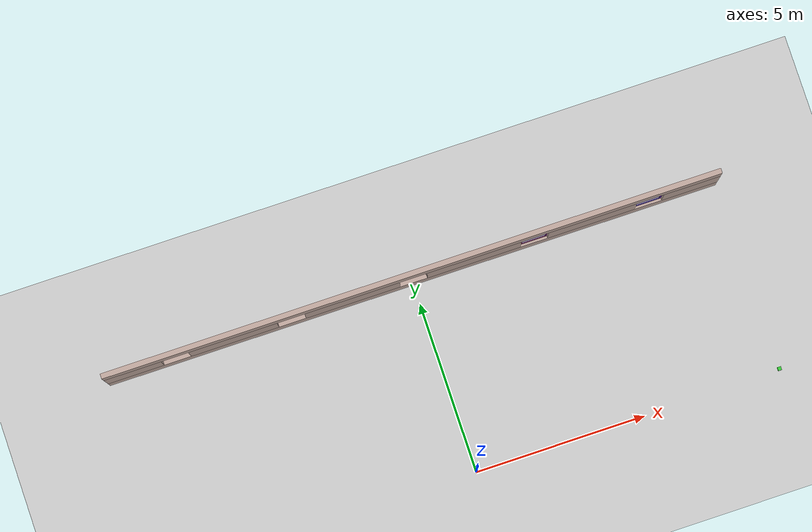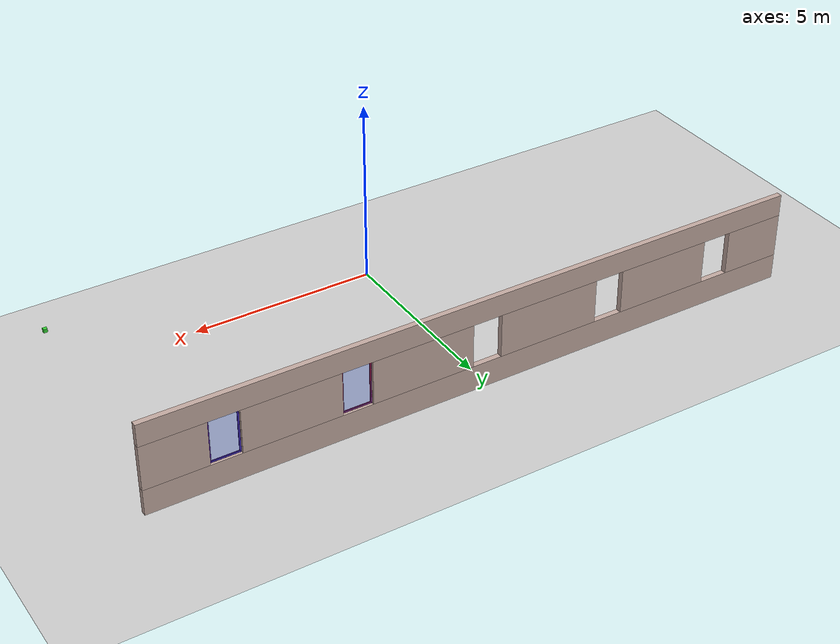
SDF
<sdf version="1.7">
 <world name="lab_world">
  <include><uri>model://sun</uri></include>
  <include><uri>model://ground_plane</uri></include>
  <model name="Wall_6">
   <static>true</static>
   <pose>0 5.6475 0 0 0 3.141592653589793</pose>
   <link name="bottom_strip">
    <pose>0 0 0.35 0 0 0</pose>
    <collision name="bottom_collision"><geometry><box><size>18.0 0.15 0.7</size></box></geometry></collision>
    <visual name="bottom_visual">
     <geometry><box><size>18.0 0.15 0.7</size></box></geometry>
     <material>
      <ambient>0.760784 0.662745 0.627451 1</ambient>
      <diffuse>0.760784 0.662745 0.627451 1</diffuse>
     </material>
    </visual>
   </link>
   <link name="middle_segment_0">
    <pose>-8.1725 0 1.2999999999999998 0 0 0</pose>
    <collision name="collision_0">
     <geometry><box><size>1.6549999999999994 0.15 1.2</size></box></geometry>
    </collision>
    <visual name="visual_0">
     <geometry><box><size>1.6549999999999994 0.15 1.2</size></box></geometry>
     <material>
      <ambient>0.760784 0.662745 0.627451 1</ambient>
      <diffuse>0.760784 0.662745 0.627451 1</diffuse>
     </material>
    </visual>
   </link>
   <link name="middle_segment_1">
    <pose>-5.255 0 1.2999999999999998 0 0 0</pose>
    <collision name="collision_1"><geometry><box><size>2.58 0.15 1.2</size></box></geometry></collision>
    <visual name="visual_1">
     <geometry><box><size>2.58 0.15 1.2</size></box></geometry>
     <material>
      <ambient>0.760784 0.662745 0.627451 1</ambient>
      <diffuse>0.760784 0.662745 0.627451 1</diffuse>
     </material>
    </visual>
   </link>
   <link name="middle_segment_2">
    <pose>-1.7875 0 1.2999999999999998 0 0 0</pose>
    <collision name="collision_2"><geometry><box><size>2.755 0.15 1.2</size></box></geometry></collision>
    <visual name="visual_2">
     <geometry><box><size>2.755 0.15 1.2</size></box></geometry>
     <material>
      <ambient>0.760784 0.662745 0.627451 1</ambient>
      <diffuse>0.760784 0.662745 0.627451 1</diffuse>
     </material>
    </visual>
   </link>
   <link name="middle_segment_3">
    <pose>1.7774999999999999 0 1.2999999999999998 0 0 0</pose>
    <collision name="collision_3"><geometry><box><size>2.775 0.15 1.2</size></box></geometry></collision>
    <visual name="visual_3">
     <geometry><box><size>2.775 0.15 1.2</size></box></geometry>
     <material>
      <ambient>0.760784 0.662745 0.627451 1</ambient>
      <diffuse>0.760784 0.662745 0.627451 1</diffuse>
     </material>
    </visual>
   </link>
   <link name="middle_segment_4">
    <pose>5.255 0 1.2999999999999998 0 0 0</pose>
    <collision name="collision_4"><geometry><box><size>2.58 0.15 1.2</size></box></geometry></collision>
    <visual name="visual_4">
     <geometry><box><size>2.58 0.15 1.2</size></box></geometry>
     <material>
      <ambient>0.760784 0.662745 0.627451 1</ambient>
      <diffuse>0.760784 0.662745 0.627451 1</diffuse>
     </material>
    </visual>
   </link>
   <link name="middle_segment_5">
    <pose>8.1725 0 1.2999999999999998 0 0 0</pose>
    <collision name="collision_5">
     <geometry><box><size>1.6549999999999994 0.15 1.2</size></box></geometry>
    </collision>
    <visual name="visual_5">
     <geometry><box><size>1.6549999999999994 0.15 1.2</size></box></geometry>
     <material>
      <ambient>0.760784 0.662745 0.627451 1</ambient>
      <diffuse>0.760784 0.662745 0.627451 1</diffuse>
     </material>
    </visual>
   </link>
   <link name="top_strip">
    <pose>0 0 2.2 0 0 0</pose>
    <collision name="top_collision">
     <geometry><box><size>18.0 0.15 0.6000000000000001</size></box></geometry>
    </collision>
    <visual name="top_visual">
     <geometry><box><size>18.0 0.15 0.6000000000000001</size></box></geometry>
     <material>
      <ambient>0.760784 0.662745 0.627451 1</ambient>
      <diffuse>0.760784 0.662745 0.627451 1</diffuse>
     </material>
    </visual>
   </link>
  </model>
  <model name="Window_6_3">
   <static>true</static>
   <link name="glass">
    <pose>3.565 5.6475 1.2999999999999998 0 0 0</pose>
    <collision name="glass_collision"><geometry><box><size>0.8 0.02 1.2</size></box></geometry></collision>
    <visual name="glass_visual">
     <geometry><box><size>0.8 0.02 1.2</size></box></geometry>
     <material><ambient>0.1 0.3 0.9 0.3</ambient><diffuse>0.1 0.3 0.9 0.3</diffuse></material>
    </visual>
   </link>
   <link name="left_frame">
    <pose>3.19 5.6475 1.2999999999999998 0 0 0</pose>
    <collision name="left_collision"><geometry><box><size>0.05 0.02 1.2</size></box></geometry></collision>
    <visual name="left_visual">
     <geometry><box><size>0.05 0.02 1.2</size></box></geometry>
     <material><ambient>0.6 0.1 0.3 1</ambient><diffuse>0.6 0.1 0.3 1</diffuse></material>
    </visual>
   </link>
   <link name="right_frame">
    <pose>3.94 5.6475 1.2999999999999998 0 0 0</pose>
    <collision name="right_collision"><geometry><box><size>0.05 0.02 1.2</size></box></geometry></collision>
    <visual name="right_visual">
     <geometry><box><size>0.05 0.02 1.2</size></box></geometry>
     <material><ambient>0.6 0.1 0.3 1</ambient><diffuse>0.6 0.1 0.3 1</diffuse></material>
    </visual>
   </link>
   <link name="top_frame">
    <pose>3.565 5.6475 1.8749999999999998 0 0 0</pose>
    <collision name="top_collision"><geometry><box><size>0.8 0.02 0.05</size></box></geometry></collision>
    <visual name="top_visual">
     <geometry><box><size>0.8 0.02 0.05</size></box></geometry>
     <material><ambient>0.6 0.1 0.3 1</ambient><diffuse>0.6 0.1 0.3 1</diffuse></material>
    </visual>
   </link>
   <link name="bottom_frame">
    <pose>3.565 5.6475 0.7249999999999999 0 0 0</pose>
    <collision name="bottom_collision"><geometry><box><size>0.8 0.02 0.05</size></box></geometry></collision>
    <visual name="bottom_visual">
     <geometry><box><size>0.8 0.02 0.05</size></box></geometry>
     <material><ambient>0.6 0.1 0.3 1</ambient><diffuse>0.6 0.1 0.3 1</diffuse></material>
    </visual>
   </link>
  </model>
  <model name="Window_6_4">
   <static>true</static>
   <link name="glass">
    <pose>6.945 5.6475 1.2999999999999998 0 0 0</pose>
    <collision name="glass_collision"><geometry><box><size>0.8 0.02 1.2</size></box></geometry></collision>
    <visual name="glass_visual">
     <geometry><box><size>0.8 0.02 1.2</size></box></geometry>
     <material><ambient>0.1 0.3 0.9 0.3</ambient><diffuse>0.1 0.3 0.9 0.3</diffuse></material>
    </visual>
   </link>
   <link name="left_frame">
    <pose>6.57 5.6475 1.2999999999999998 0 0 0</pose>
    <collision name="left_collision"><geometry><box><size>0.05 0.02 1.2</size></box></geometry></collision>
    <visual name="left_visual">
     <geometry><box><size>0.05 0.02 1.2</size></box></geometry>
     <material><ambient>0.3 0.1 0.6 1</ambient><diffuse>0.3 0.1 0.6 1</diffuse></material>
    </visual>
   </link>
   <link name="right_frame">
    <pose>7.32 5.6475 1.2999999999999998 0 0 0</pose>
    <collision name="right_collision"><geometry><box><size>0.05 0.02 1.2</size></box></geometry></collision>
    <visual name="right_visual">
     <geometry><box><size>0.05 0.02 1.2</size></box></geometry>
     <material><ambient>0.3 0.1 0.6 1</ambient><diffuse>0.3 0.1 0.6 1</diffuse></material>
    </visual>
   </link>
   <link name="top_frame">
    <pose>6.945 5.6475 1.8749999999999998 0 0 0</pose>
    <collision name="top_collision"><geometry><box><size>0.8 0.02 0.05</size></box></geometry></collision>
    <visual name="top_visual">
     <geometry><box><size>0.8 0.02 0.05</size></box></geometry>
     <material><ambient>0.3 0.1 0.6 1</ambient><diffuse>0.3 0.1 0.6 1</diffuse></material>
    </visual>
   </link>
   <link name="bottom_frame">
    <pose>6.945 5.6475 0.7249999999999999 0 0 0</pose>
    <collision name="bottom_collision"><geometry><box><size>0.8 0.02 0.05</size></box></geometry></collision>
    <visual name="bottom_visual">
     <geometry><box><size>0.8 0.02 0.05</size></box></geometry>
     <material><ambient>0.3 0.1 0.6 1</ambient><diffuse>0.3 0.1 0.6 1</diffuse></material>
    </visual>
   </link>
  </model>
  <model name="camera_wall4">
   <static>true</static>
   <pose>8.85 0 1.5 0 0 3.1416</pose>
   <link name="camera_link">
    <visual name="visual">
     <geometry><box><size>0.1 0.1 0.1</size></box></geometry>
     <material><ambient>0.2 0.8 0.2 1</ambient><diffuse>0.2 0.8 0.2 1</diffuse></material>
    </visual>
    <sensor name="camera2" type="camera">
     <always_on>true</always_on>
     <update_rate>30</update_rate>
     <visualize>false</visualize>
     <camera>
      <horizontal_fov>1.047</horizontal_fov>
      <image><width>1024</width><height>768</height></image>
      <clip><near>0.1</near><far>100</far></clip>
     </camera>
     <plugin name="camera2_plugin" filename="libgazebo_ros_camera.so">
      <ros><namespace>/rover1/camera2</namespace></ros>
      <camera_name>camera2</camera_name>
      <image_topic_name>image_raw</image_topic_name>
      <camera_info_topic_name>camera_info2</camera_info_topic_name>
      <frame_name>camera2_frame</frame_name>
      <hack_base_name>camera2</hack_base_name>
      <robotNamespace>/rover1</robotNamespace>
     </plugin>
    </sensor>
   </link>
  </model>
 </world>
</sdf>
